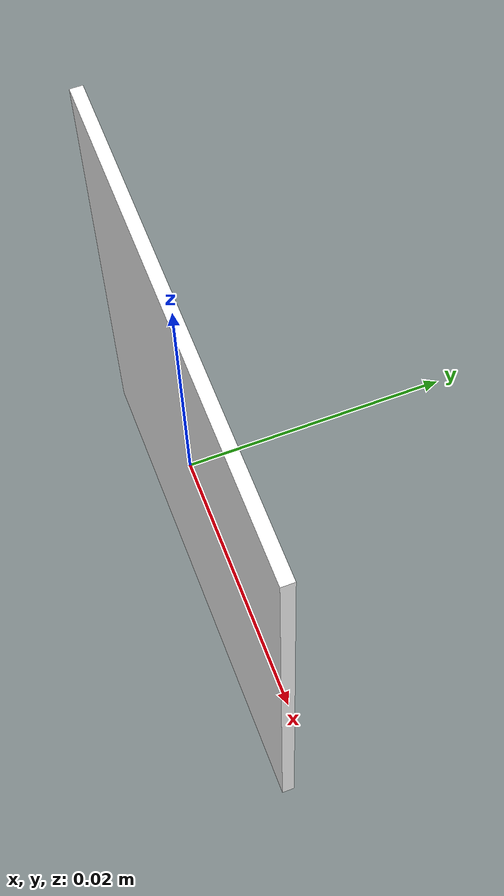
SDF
<?xml version="1.0"?>
<sdf version="1.8">
    <model name="aruco_marker_18">
        <static>true</static>
        <link name="link">
            <visual name="visual">
                <geometry>
                    <box>
                        <size>0.04 0.001 0.04</size>
                    </box>
                </geometry>
                <material>
                    <ambient>1 1 1 1</ambient>
                    <diffuse>1 1 1 1</diffuse>
                    <specular>0 0 0 1</specular>
                    <pbr>
                        <metal>
                            <albedo_map>materials/textures/aruco_marker_18.png</albedo_map>
                            <metalness>0.0</metalness>
                            <roughness>1.0</roughness>
                        </metal>
                    </pbr>
                </material>
            </visual>
            <collision name="collision">
                <geometry>
                    <box>
                        <size>0.1 0.001 0.1</size>
                    </box>
                </geometry>
            </collision>
        </link>
    </model>
</sdf>
